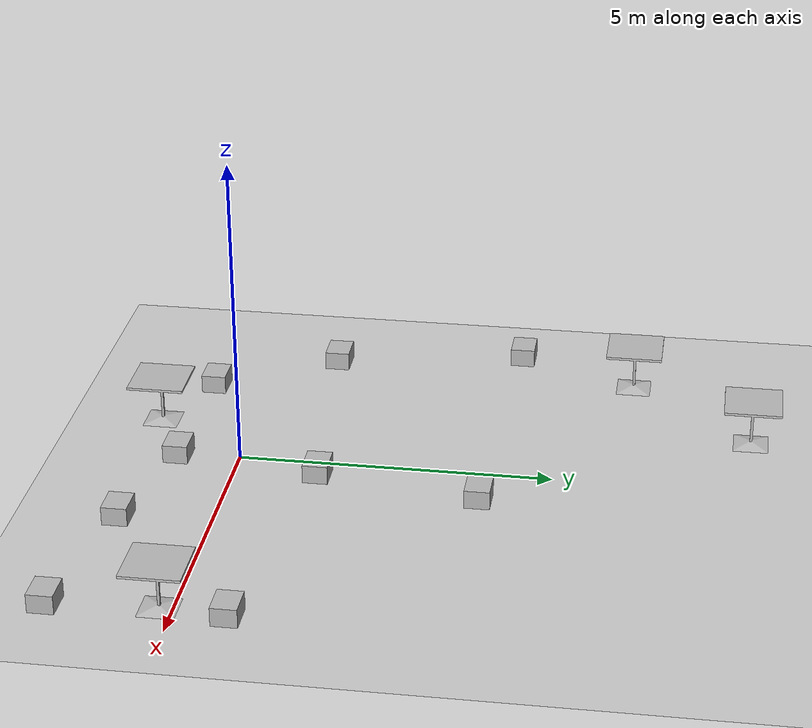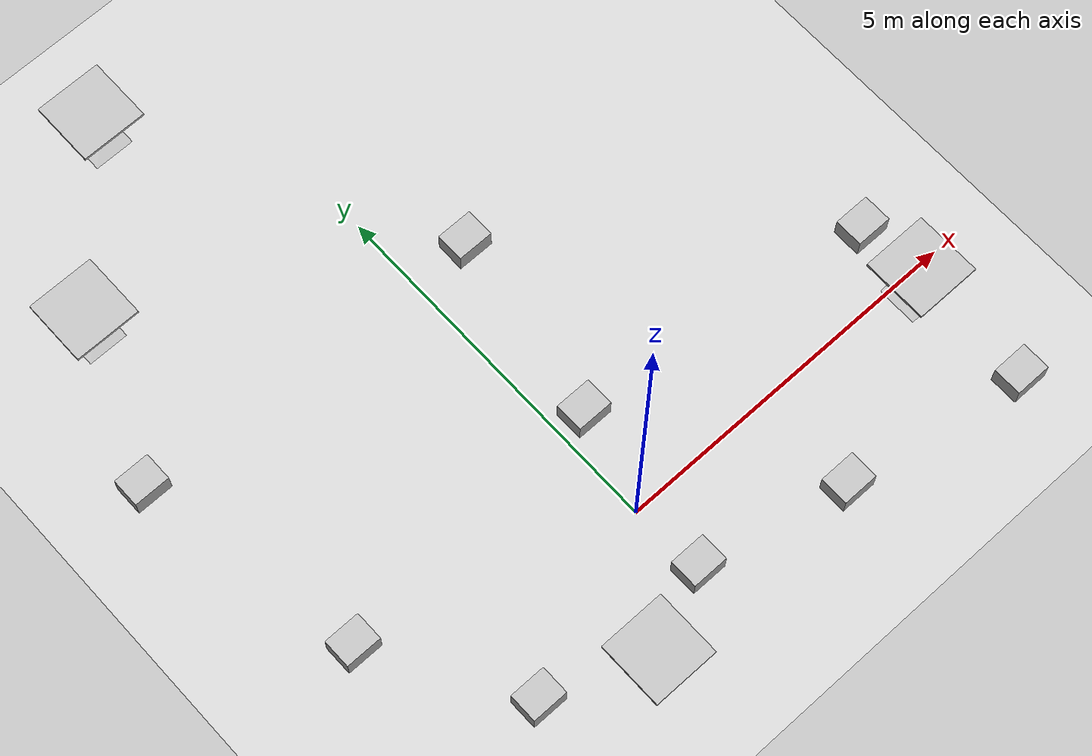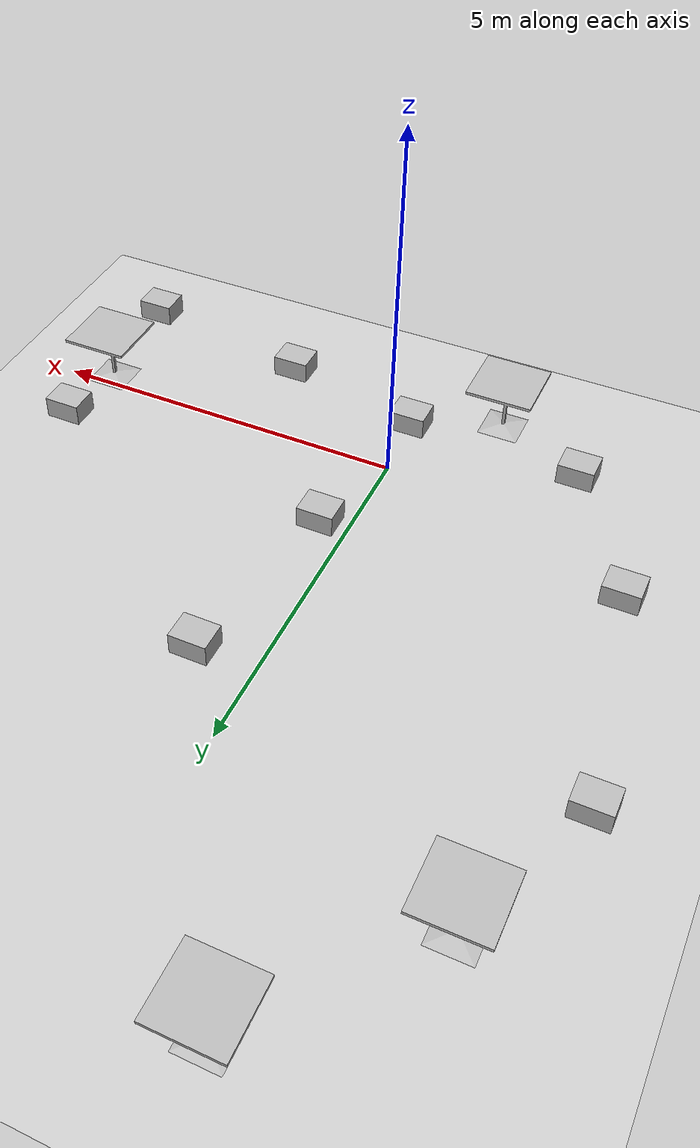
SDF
<sdf version="1.7">
 <world name="default">
  <light name="sun" type="directional">
   <pose>0 0 10 0 -0 0</pose>
   <diffuse>0.8 0.8 0.8 1</diffuse>
   <specular>0.2 0.2 0.2 1</specular>
   <attenuation>
    <range>1000</range>
    <constant>0.9</constant>
    <linear>0.01</linear>
    <quadratic>0.001</quadratic>
   </attenuation>
   <direction>-0.5 0.1 -0.9</direction>
   <spot><inner_angle>0</inner_angle><outer_angle>0</outer_angle><falloff>0</falloff></spot>
  </light>
  <model name="ground_plane">
   <static>1</static>
   <link name="link">
    <collision name="collision">
     <geometry><plane><normal>0 0 1</normal><size>100 100</size></plane></geometry>
     <surface>
      <contact><collide_bitmask>65535</collide_bitmask></contact>
      <friction><ode><mu>100</mu><mu2>50</mu2></ode></friction>
     </surface>
    </collision>
    <visual name="visual">
     <cast_shadows>0</cast_shadows>
     <geometry><plane><normal>0 0 1</normal><size>100 100</size></plane></geometry>
     <material>
      <script><uri>file://media/materials/scripts/gazebo.material</uri><name>Gazebo/Grey</name></script>
     </material>
    </visual>
   </link>
  </model>
  <gravity>0 0 -9.8</gravity>
  <magnetic_field>6e-06 2.3e-05 -4.2e-05</magnetic_field>
  <atmosphere type="adiabatic"/>
  <physics type="ode">
   <max_step_size>0.001</max_step_size>
   <real_time_factor>1</real_time_factor>
   <real_time_update_rate>1000</real_time_update_rate>
  </physics>
  <scene><ambient>0.4 0.4 0.4 1</ambient><background>0.7 0.7 0.7 1</background><shadows>1</shadows></scene>
  <spherical_coordinates>
   <surface_model>EARTH_WGS84</surface_model>
   <latitude_deg>0</latitude_deg>
   <longitude_deg>0</longitude_deg>
   <elevation>0</elevation>
   <heading_deg>0</heading_deg>
  </spherical_coordinates>
  <model name="cardboard_box">
   <pose>-2.37612 -0.91099 0.149 0 -0 0</pose>
   <link name="link">
    <inertial>
     <mass>2</mass>
     <inertia>
      <ixx>0.0416667</ixx>
      <ixy>0</ixy>
      <ixz>0</ixz>
      <iyy>0.0566667</iyy>
      <iyz>0</iyz>
      <izz>0.0683333</izz>
     </inertia>
    </inertial>
    <collision name="collision">
     <geometry><box><size>0.5 0.4 0.3</size></box></geometry>
     <surface>
      <friction><ode><mu>1</mu><mu2>1</mu2></ode></friction>
      <contact><ode><kp>1e+07</kp><kd>1</kd><min_depth>0.001</min_depth><max_vel>0.1</max_vel></ode></contact>
     </surface>
    </collision>
    <visual name="visual">
     <pose>0 0 -0.15 0 -0 0</pose>
     <geometry>
      <mesh><uri>model://cardboard_box/meshes/cardboard_box.dae</uri><scale>1.25932 1.00745 0.755591</scale></mesh>
     </geometry>
    </visual>
   </link>
  </model>
  <model name="cardboard_box_0">
   <pose>-3.5249 0.993593 0.149 0 -0 0</pose>
   <link name="link">
    <inertial>
     <mass>2</mass>
     <inertia>
      <ixx>0.0416667</ixx>
      <ixy>0</ixy>
      <ixz>0</ixz>
      <iyy>0.0566667</iyy>
      <iyz>0</iyz>
      <izz>0.0683333</izz>
     </inertia>
    </inertial>
    <collision name="collision">
     <geometry><box><size>0.5 0.4 0.3</size></box></geometry>
     <surface>
      <friction><ode><mu>1</mu><mu2>1</mu2></ode></friction>
      <contact><ode><kp>1e+07</kp><kd>1</kd><min_depth>0.001</min_depth><max_vel>0.1</max_vel></ode></contact>
     </surface>
    </collision>
    <visual name="visual">
     <pose>0 0 -0.15 0 -0 0</pose>
     <geometry>
      <mesh><uri>model://cardboard_box/meshes/cardboard_box.dae</uri><scale>1.25932 1.00745 0.755591</scale></mesh>
     </geometry>
    </visual>
   </link>
  </model>
  <model name="cardboard_box_2">
   <pose>0.065578 -0.981987 0.149 0 -0 0</pose>
   <link name="link">
    <inertial>
     <mass>2</mass>
     <inertia>
      <ixx>0.0416667</ixx>
      <ixy>0</ixy>
      <ixz>0</ixz>
      <iyy>0.0566667</iyy>
      <iyz>0</iyz>
      <izz>0.0683333</izz>
     </inertia>
    </inertial>
    <collision name="collision">
     <geometry><box><size>0.5 0.4 0.3</size></box></geometry>
     <surface>
      <friction><ode><mu>1</mu><mu2>1</mu2></ode></friction>
      <contact><ode><kp>1e+07</kp><kd>1</kd><min_depth>0.001</min_depth><max_vel>0.1</max_vel></ode></contact>
     </surface>
    </collision>
    <visual name="visual">
     <pose>0 0 -0.15 0 -0 0</pose>
     <geometry>
      <mesh><uri>model://cardboard_box/meshes/cardboard_box.dae</uri><scale>1.25932 1.00745 0.755591</scale></mesh>
     </geometry>
    </visual>
   </link>
  </model>
  <model name="cardboard_box_3">
   <pose>0.389916 1.33294 0.149 0 -0 0</pose>
   <link name="link">
    <inertial>
     <mass>2</mass>
     <inertia>
      <ixx>0.0416667</ixx>
      <ixy>0</ixy>
      <ixz>0</ixz>
      <iyy>0.0566667</iyy>
      <iyz>0</iyz>
      <izz>0.0683333</izz>
     </inertia>
    </inertial>
    <collision name="collision">
     <geometry><box><size>0.5 0.4 0.3</size></box></geometry>
     <surface>
      <friction><ode><mu>1</mu><mu2>1</mu2></ode></friction>
      <contact><ode><kp>1e+07</kp><kd>1</kd><min_depth>0.001</min_depth><max_vel>0.1</max_vel></ode></contact>
     </surface>
    </collision>
    <visual name="visual">
     <pose>0 0 -0.15 0 -0 0</pose>
     <geometry>
      <mesh><uri>model://cardboard_box/meshes/cardboard_box.dae</uri><scale>1.25932 1.00745 0.755591</scale></mesh>
     </geometry>
    </visual>
   </link>
  </model>
  <model name="cardboard_box_4">
   <pose>0.807806 3.93042 0.149 0 -0 0</pose>
   <link name="link">
    <inertial>
     <mass>2</mass>
     <inertia>
      <ixx>0.0416667</ixx>
      <ixy>0</ixy>
      <ixz>0</ixz>
      <iyy>0.0566667</iyy>
      <iyz>0</iyz>
      <izz>0.0683333</izz>
     </inertia>
    </inertial>
    <collision name="collision">
     <geometry><box><size>0.5 0.4 0.3</size></box></geometry>
     <surface>
      <friction><ode><mu>1</mu><mu2>1</mu2></ode></friction>
      <contact><ode><kp>1e+07</kp><kd>1</kd><min_depth>0.001</min_depth><max_vel>0.1</max_vel></ode></contact>
     </surface>
    </collision>
    <visual name="visual">
     <pose>0 0 -0.15 0 -0 0</pose>
     <geometry>
      <mesh><uri>model://cardboard_box/meshes/cardboard_box.dae</uri><scale>1.25932 1.00745 0.755591</scale></mesh>
     </geometry>
    </visual>
   </link>
  </model>
  <model name="cafe_table_0">
   <static>1</static>
   <link name="link">
    <collision name="surface">
     <pose>0 0 0.755 0 -0 0</pose>
     <geometry><box><size>0.913 0.913 0.04</size></box></geometry>
    </collision>
    <collision name="column">
     <pose>0 0 0.37 0 -0 0</pose>
     <geometry><box><size>0.042 0.042 0.74</size></box></geometry>
    </collision>
    <collision name="base">
     <pose>0 0 0.02 0 -0 0</pose>
     <geometry><box><size>0.56 0.56 0.04</size></box></geometry>
    </collision>
    <visual name="visual">
     <geometry><mesh><uri>model://cafe_table/meshes/cafe_table.dae</uri></mesh></geometry>
    </visual>
   </link>
   <pose>-1.60122 8.05914 0 0 -0 0</pose>
  </model>
  <model name="cardboard_box_5">
   <pose>2.06558 -1.4325 0.149 0 -0 0</pose>
   <link name="link">
    <inertial>
     <mass>2</mass>
     <inertia>
      <ixx>0.0416667</ixx>
      <ixy>0</ixy>
      <ixz>0</ixz>
      <iyy>0.0566667</iyy>
      <iyz>0</iyz>
      <izz>0.0683333</izz>
     </inertia>
    </inertial>
    <collision name="collision">
     <geometry><box><size>0.5 0.4 0.3</size></box></geometry>
     <surface>
      <friction><ode><mu>1</mu><mu2>1</mu2></ode></friction>
      <contact><ode><kp>1e+07</kp><kd>1</kd><min_depth>0.001</min_depth><max_vel>0.1</max_vel></ode></contact>
     </surface>
    </collision>
    <visual name="visual">
     <pose>0 0 -0.15 0 -0 0</pose>
     <geometry>
      <mesh><uri>model://cardboard_box/meshes/cardboard_box.dae</uri><scale>1.25932 1.00745 0.755591</scale></mesh>
     </geometry>
    </visual>
   </link>
  </model>
  <model name="cafe_table_2">
   <static>1</static>
   <link name="link">
    <collision name="surface">
     <pose>0 0 0.755 0 -0 0</pose>
     <geometry><box><size>0.913 0.913 0.04</size></box></geometry>
    </collision>
    <collision name="column">
     <pose>0 0 0.37 0 -0 0</pose>
     <geometry><box><size>0.042 0.042 0.74</size></box></geometry>
    </collision>
    <collision name="base">
     <pose>0 0 0.02 0 -0 0</pose>
     <geometry><box><size>0.56 0.56 0.04</size></box></geometry>
    </collision>
    <visual name="visual">
     <geometry><mesh><uri>model://cafe_table/meshes/cafe_table.dae</uri></mesh></geometry>
    </visual>
   </link>
   <pose>-3.29847 6.07283 0 0 -0 0</pose>
  </model>
  <model name="cafe_table">
   <static>1</static>
   <link name="link">
    <collision name="surface">
     <pose>0 0 0.755 0 -0 0</pose>
     <geometry><box><size>0.913 0.913 0.04</size></box></geometry>
    </collision>
    <collision name="column">
     <pose>0 0 0.37 0 -0 0</pose>
     <geometry><box><size>0.042 0.042 0.74</size></box></geometry>
    </collision>
    <collision name="base">
     <pose>0 0 0.02 0 -0 0</pose>
     <geometry><box><size>0.56 0.56 0.04</size></box></geometry>
    </collision>
    <visual name="visual">
     <geometry><mesh><uri>model://cafe_table/meshes/cafe_table.dae</uri></mesh></geometry>
    </visual>
   </link>
   <pose>-1.11086 -1.52602 0 0 -0 0</pose>
  </model>
  <model name="cardboard_box_1">
   <pose>-4.08823 4.1288 0.149 0 -0 0</pose>
   <link name="link">
    <inertial>
     <mass>2</mass>
     <inertia>
      <ixx>0.0416667</ixx>
      <ixy>0</ixy>
      <ixz>0</ixz>
      <iyy>0.0566667</iyy>
      <iyz>0</iyz>
      <izz>0.0683333</izz>
     </inertia>
    </inertial>
    <collision name="collision">
     <geometry><box><size>0.5 0.4 0.3</size></box></geometry>
     <surface>
      <friction><ode><mu>1</mu><mu2>1</mu2></ode></friction>
      <contact><ode><kp>1e+07</kp><kd>1</kd><min_depth>0.001</min_depth><max_vel>0.1</max_vel></ode></contact>
     </surface>
    </collision>
    <visual name="visual">
     <pose>0 0 -0.15 0 -0 0</pose>
     <geometry>
      <mesh><uri>model://cardboard_box/meshes/cardboard_box.dae</uri><scale>1.25932 1.00745 0.755591</scale></mesh>
     </geometry>
    </visual>
   </link>
  </model>
  <model name="cardboard_box_6">
   <pose>4.55729 -1.83786 0.149 0 -0 0</pose>
   <link name="link">
    <inertial>
     <mass>2</mass>
     <inertia>
      <ixx>0.0416667</ixx>
      <ixy>0</ixy>
      <ixz>0</ixz>
      <iyy>0.0566667</iyy>
      <iyz>0</iyz>
      <izz>0.0683333</izz>
     </inertia>
    </inertial>
    <collision name="collision">
     <geometry><box><size>0.5 0.4 0.3</size></box></geometry>
     <surface>
      <friction><ode><mu>1</mu><mu2>1</mu2></ode></friction>
      <contact><ode><kp>1e+07</kp><kd>1</kd><min_depth>0.001</min_depth><max_vel>0.1</max_vel></ode></contact>
     </surface>
    </collision>
    <visual name="visual">
     <pose>0 0 -0.15 0 -0 0</pose>
     <geometry>
      <mesh><uri>model://cardboard_box/meshes/cardboard_box.dae</uri><scale>1.25932 1.00745 0.755591</scale></mesh>
     </geometry>
    </visual>
   </link>
  </model>
  <model name="cardboard_box_7">
   <pose>4.5305 0.813174 0.149 0 -0 0</pose>
   <link name="link">
    <inertial>
     <mass>2</mass>
     <inertia>
      <ixx>0.0416667</ixx>
      <ixy>0</ixy>
      <ixz>0</ixz>
      <iyy>0.0566667</iyy>
      <iyz>0</iyz>
      <izz>0.0683333</izz>
     </inertia>
    </inertial>
    <collision name="collision">
     <geometry><box><size>0.5 0.4 0.3</size></box></geometry>
     <surface>
      <friction><ode><mu>1</mu><mu2>1</mu2></ode></friction>
      <contact><ode><kp>1e+07</kp><kd>1</kd><min_depth>0.001</min_depth><max_vel>0.1</max_vel></ode></contact>
     </surface>
    </collision>
    <visual name="visual">
     <pose>0 0 -0.15 0 -0 0</pose>
     <geometry>
      <mesh><uri>model://cardboard_box/meshes/cardboard_box.dae</uri><scale>1.25932 1.00745 0.755591</scale></mesh>
     </geometry>
    </visual>
   </link>
  </model>
  <model name="cafe_table_1">
   <static>1</static>
   <link name="link">
    <collision name="surface">
     <pose>0 0 0.755 0 -0 0</pose>
     <geometry><box><size>0.913 0.913 0.04</size></box></geometry>
    </collision>
    <collision name="column">
     <pose>0 0 0.37 0 -0 0</pose>
     <geometry><box><size>0.042 0.042 0.74</size></box></geometry>
    </collision>
    <collision name="base">
     <pose>0 0 0.02 0 -0 0</pose>
     <geometry><box><size>0.56 0.56 0.04</size></box></geometry>
    </collision>
    <visual name="visual">
     <geometry><mesh><uri>model://cafe_table/meshes/cafe_table.dae</uri></mesh></geometry>
    </visual>
   </link>
   <pose>4.41914 -0.204527 0 0 -0 0</pose>
  </model>
 </world>
</sdf>
